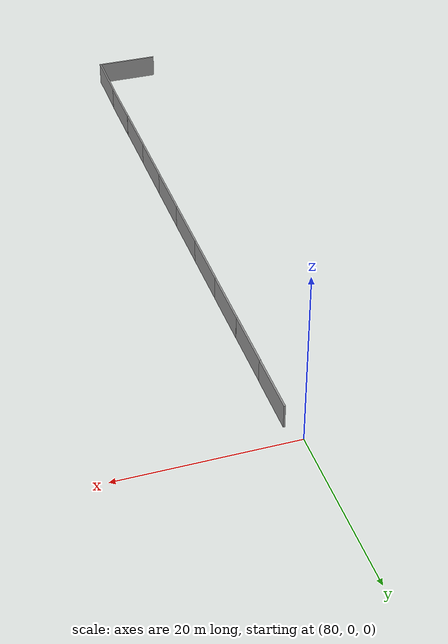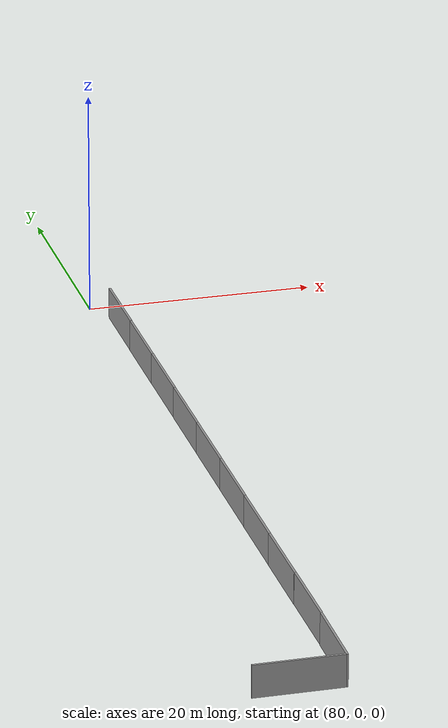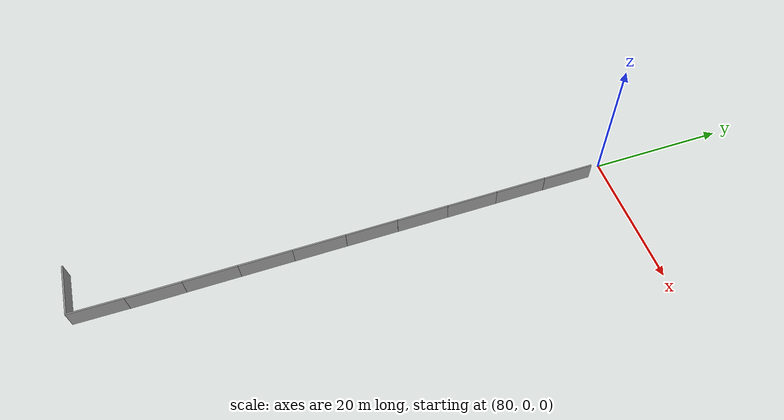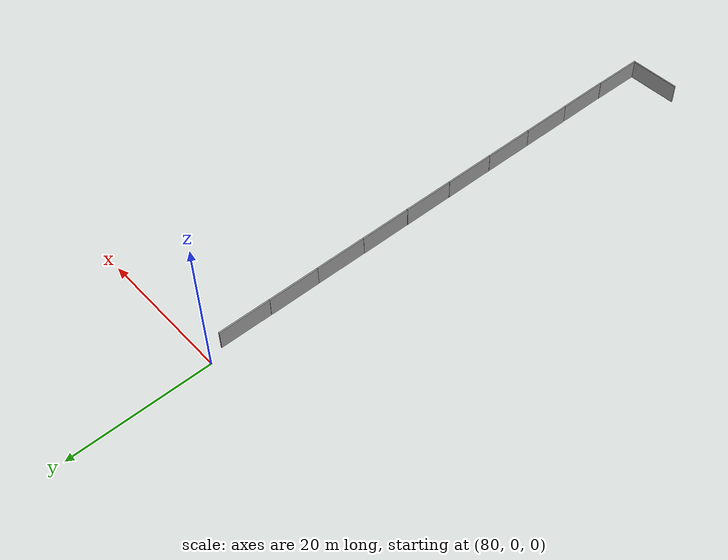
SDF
<sdf version="1.7">
 <world name="default">
  <model name="grey_wall_clone_10_clone_clone_clone_11_clone_clone_17">
   <static>1</static>
   <link name="link">
    <pose>0 0 1.4 0 -0 0</pose>
    <collision name="collision"><geometry><box><size>7.5 0.2 2.8</size></box></geometry></collision>
    <visual name="visual">
     <cast_shadows>0</cast_shadows>
     <geometry><box><size>7.5 0.2 2.8</size></box></geometry>
     <material>
      <script>
       <uri>model://forest/grey_wall/materials/scripts</uri>
       <uri>model://forest/grey_wall/materials/textures</uri>
       <name>vrc/grey_wall</name>
      </script>
     </material>
    </visual>
   </link>
   <pose>77.4066 -77.2521 0 0 -0 0</pose>
  </model>
  <model name="grey_wall_clone_10_clone_0_clone_11_clone">
   <static>1</static>
   <link name="link">
    <pose>0 0 1.4 0 -0 0</pose>
    <collision name="collision"><geometry><box><size>7.5 0.2 2.8</size></box></geometry></collision>
    <visual name="visual">
     <cast_shadows>0</cast_shadows>
     <geometry><box><size>7.5 0.2 2.8</size></box></geometry>
     <material>
      <script>
       <uri>model://forest/grey_wall/materials/scripts</uri>
       <uri>model://forest/grey_wall/materials/textures</uri>
       <name>vrc/grey_wall</name>
      </script>
     </material>
    </visual>
   </link>
   <pose>81.2442 -73.5802 0 0 0 -1.5802</pose>
  </model>
  <model name="grey_wall_clone_10_clone_0_clone_10_clone">
   <static>1</static>
   <link name="link">
    <pose>0 0 1.4 0 -0 0</pose>
    <collision name="collision"><geometry><box><size>7.5 0.2 2.8</size></box></geometry></collision>
    <visual name="visual">
     <cast_shadows>0</cast_shadows>
     <geometry><box><size>7.5 0.2 2.8</size></box></geometry>
     <material>
      <script>
       <uri>model://forest/grey_wall/materials/scripts</uri>
       <uri>model://forest/grey_wall/materials/textures</uri>
       <name>vrc/grey_wall</name>
      </script>
     </material>
    </visual>
   </link>
   <pose>81.3001 -66.0858 0 0 0 -1.56932</pose>
  </model>
  <model name="grey_wall_clone_10_clone_0_clone_9_clone">
   <static>1</static>
   <link name="link">
    <pose>0 0 1.4 0 -0 0</pose>
    <collision name="collision"><geometry><box><size>7.5 0.2 2.8</size></box></geometry></collision>
    <visual name="visual">
     <cast_shadows>0</cast_shadows>
     <geometry><box><size>7.5 0.2 2.8</size></box></geometry>
     <material>
      <script>
       <uri>model://forest/grey_wall/materials/scripts</uri>
       <uri>model://forest/grey_wall/materials/textures</uri>
       <name>vrc/grey_wall</name>
      </script>
     </material>
    </visual>
   </link>
   <pose>81.2777 -58.6142 0 0 0 -1.56932</pose>
  </model>
  <model name="grey_wall_clone_10_clone_0_clone_8_clone">
   <static>1</static>
   <link name="link">
    <pose>0 0 1.4 0 -0 0</pose>
    <collision name="collision"><geometry><box><size>7.5 0.2 2.8</size></box></geometry></collision>
    <visual name="visual">
     <cast_shadows>0</cast_shadows>
     <geometry><box><size>7.5 0.2 2.8</size></box></geometry>
     <material>
      <script>
       <uri>model://forest/grey_wall/materials/scripts</uri>
       <uri>model://forest/grey_wall/materials/textures</uri>
       <name>vrc/grey_wall</name>
      </script>
     </material>
    </visual>
   </link>
   <pose>81.2777 -51.1177 0 0 0 -1.56932</pose>
  </model>
  <model name="grey_wall_clone_10_clone_0_clone_7_clone">
   <static>1</static>
   <link name="link">
    <pose>0 0 1.4 0 -0 0</pose>
    <collision name="collision"><geometry><box><size>7.5 0.2 2.8</size></box></geometry></collision>
    <visual name="visual">
     <cast_shadows>0</cast_shadows>
     <geometry><box><size>7.5 0.2 2.8</size></box></geometry>
     <material>
      <script>
       <uri>model://forest/grey_wall/materials/scripts</uri>
       <uri>model://forest/grey_wall/materials/textures</uri>
       <name>vrc/grey_wall</name>
      </script>
     </material>
    </visual>
   </link>
   <pose>81.2788 -43.6064 0 0 0 -1.56932</pose>
  </model>
  <model name="grey_wall_clone_10_clone_0_clone_6_clone">
   <static>1</static>
   <link name="link">
    <pose>0 0 1.4 0 -0 0</pose>
    <collision name="collision"><geometry><box><size>7.5 0.2 2.8</size></box></geometry></collision>
    <visual name="visual">
     <cast_shadows>0</cast_shadows>
     <geometry><box><size>7.5 0.2 2.8</size></box></geometry>
     <material>
      <script>
       <uri>model://forest/grey_wall/materials/scripts</uri>
       <uri>model://forest/grey_wall/materials/textures</uri>
       <name>vrc/grey_wall</name>
      </script>
     </material>
    </visual>
   </link>
   <pose>81.2767 -36.0958 0 0 0 -1.56932</pose>
  </model>
  <model name="grey_wall_clone_10_clone_0_clone_5_clone_13">
   <static>1</static>
   <link name="link">
    <pose>0 0 1.4 0 -0 0</pose>
    <collision name="collision"><geometry><box><size>7.5 0.2 2.8</size></box></geometry></collision>
    <visual name="visual">
     <cast_shadows>0</cast_shadows>
     <geometry><box><size>7.5 0.2 2.8</size></box></geometry>
     <material>
      <script>
       <uri>model://forest/grey_wall/materials/scripts</uri>
       <uri>model://forest/grey_wall/materials/textures</uri>
       <name>vrc/grey_wall</name>
      </script>
     </material>
    </visual>
   </link>
   <pose>81.2728 -28.5811 0 0 0 -1.56932</pose>
  </model>
  <model name="grey_wall_clone_10_clone_0_clone_4_clone">
   <static>1</static>
   <link name="link">
    <pose>0 0 1.4 0 -0 0</pose>
    <collision name="collision"><geometry><box><size>7.5 0.2 2.8</size></box></geometry></collision>
    <visual name="visual">
     <cast_shadows>0</cast_shadows>
     <geometry><box><size>7.5 0.2 2.8</size></box></geometry>
     <material>
      <script>
       <uri>model://forest/grey_wall/materials/scripts</uri>
       <uri>model://forest/grey_wall/materials/textures</uri>
       <name>vrc/grey_wall</name>
      </script>
     </material>
    </visual>
   </link>
   <pose>81.2736 -21.0806 0 0 0 -1.56932</pose>
  </model>
  <model name="grey_wall_clone_10_clone_0_clone_3_clone">
   <static>1</static>
   <link name="link">
    <pose>0 0 1.4 0 -0 0</pose>
    <collision name="collision"><geometry><box><size>7.5 0.2 2.8</size></box></geometry></collision>
    <visual name="visual">
     <cast_shadows>0</cast_shadows>
     <geometry><box><size>7.5 0.2 2.8</size></box></geometry>
     <material>
      <script>
       <uri>model://forest/grey_wall/materials/scripts</uri>
       <uri>model://forest/grey_wall/materials/textures</uri>
       <name>vrc/grey_wall</name>
      </script>
     </material>
    </visual>
   </link>
   <pose>81.2554 -13.5842 0 0 0 -1.56932</pose>
  </model>
  <model name="grey_wall_clone_10_clone_0_clone_2_clone">
   <static>1</static>
   <link name="link">
    <pose>0 0 1.4 0 -0 0</pose>
    <collision name="collision"><geometry><box><size>7.5 0.2 2.8</size></box></geometry></collision>
    <visual name="visual">
     <cast_shadows>0</cast_shadows>
     <geometry><box><size>7.5 0.2 2.8</size></box></geometry>
     <material>
      <script>
       <uri>model://forest/grey_wall/materials/scripts</uri>
       <uri>model://forest/grey_wall/materials/textures</uri>
       <name>vrc/grey_wall</name>
      </script>
     </material>
    </visual>
   </link>
   <pose>81.262 -6.06923 0 0 0 -1.56932</pose>
  </model>
 </world>
</sdf>
